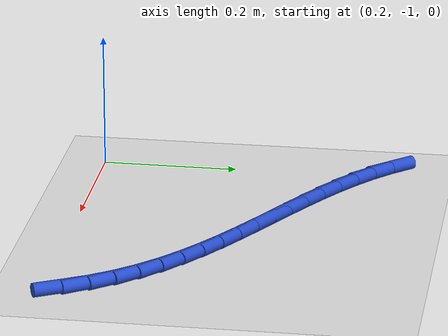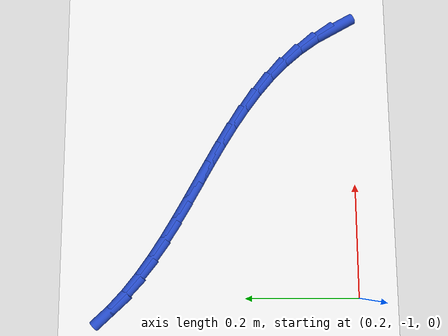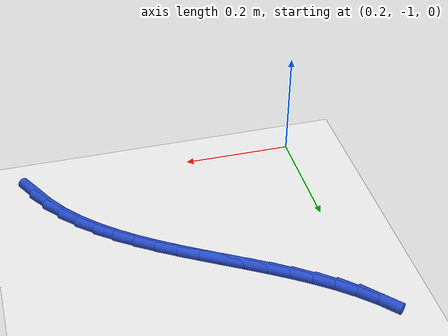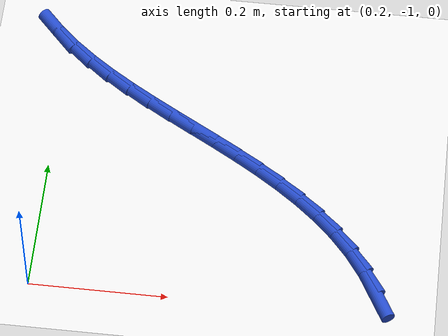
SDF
<sdf version="1.6">
 <world name="default">
  <model name="ground_plane">
   <static>1</static>
   <link name="link">
    <collision name="collision">
     <geometry><plane><normal>0 0 1</normal><size>100 100</size></plane></geometry>
     <surface><friction><ode><mu>100</mu><mu2>50</mu2></ode></friction></surface>
    </collision>
    <visual name="visual">
     <cast_shadows>0</cast_shadows>
     <geometry><plane><normal>0 0 1</normal><size>100 100</size></plane></geometry>
     <material>
      <script><uri>file://media/materials/scripts/gazebo.material</uri><name>Gazebo/WhiteGlow</name></script>
     </material>
    </visual>
   </link>
  </model>
  <model name="line">
   <link name="link_187">
    <pose>0.6930925236907395 -0.9702660807357963 0.01 0 1.57 -1.0674114153881227</pose>
    <collision name="collision">
     <geometry><cylinder><radius>0.01</radius><length>0.08</length></cylinder></geometry>
    </collision>
    <visual name="visual">
     <material>
      <script><name>Gazebo/Blue</name><uri>file://media/materials/scripts/gazebo.material</uri></script>
     </material>
     <geometry><cylinder><radius>0.01</radius><length>0.08</length></cylinder></geometry>
    </visual>
   </link>
   <link name="link_188">
    <pose>0.6742428546986615 -0.9360378778726408 0.01 0 1.57 -0.9606049195033619</pose>
    <collision name="collision">
     <geometry><cylinder><radius>0.01</radius><length>0.08</length></cylinder></geometry>
    </collision>
    <visual name="visual">
     <material>
      <script><name>Gazebo/Blue</name><uri>file://media/materials/scripts/gazebo.material</uri></script>
     </material>
     <geometry><cylinder><radius>0.01</radius><length>0.08</length></cylinder></geometry>
    </visual>
   </link>
   <link name="link_189">
    <pose>0.6522844045194799 -0.9046329428093817 0.01 0 1.57 -0.8628305489370522</pose>
    <collision name="collision">
     <geometry><cylinder><radius>0.01</radius><length>0.08</length></cylinder></geometry>
    </collision>
    <visual name="visual">
     <material>
      <script><name>Gazebo/Blue</name><uri>file://media/materials/scripts/gazebo.material</uri></script>
     </material>
     <geometry><cylinder><radius>0.01</radius><length>0.08</length></cylinder></geometry>
    </visual>
   </link>
   <link name="link_190">
    <pose>0.6275602483954317 -0.8757495069277265 0.01 0 1.57 -0.7764209451681272</pose>
    <collision name="collision">
     <geometry><cylinder><radius>0.01</radius><length>0.08</length></cylinder></geometry>
    </collision>
    <visual name="visual">
     <material>
      <script><name>Gazebo/Blue</name><uri>file://media/materials/scripts/gazebo.material</uri></script>
     </material>
     <geometry><cylinder><radius>0.01</radius><length>0.08</length></cylinder></geometry>
    </visual>
   </link>
   <link name="link_191">
    <pose>0.6004134615687547 -0.8490858016093839 0.01 0 1.57 -0.7025711231255173</pose>
    <collision name="collision">
     <geometry><cylinder><radius>0.01</radius><length>0.08</length></cylinder></geometry>
    </collision>
    <visual name="visual">
     <material>
      <script><name>Gazebo/Blue</name><uri>file://media/materials/scripts/gazebo.material</uri></script>
     </material>
     <geometry><cylinder><radius>0.01</radius><length>0.08</length></cylinder></geometry>
    </visual>
   </link>
   <link name="link_192">
    <pose>0.5711871192816859 -0.824340058236061 0.01 0 1.57 -0.6415850096895259</pose>
    <collision name="collision">
     <geometry><cylinder><radius>0.01</radius><length>0.08</length></cylinder></geometry>
    </collision>
    <visual name="visual">
     <material>
      <script><name>Gazebo/Blue</name><uri>file://media/materials/scripts/gazebo.material</uri></script>
     </material>
     <geometry><cylinder><radius>0.01</radius><length>0.08</length></cylinder></geometry>
    </visual>
   </link>
   <link name="link_193">
    <pose>0.5402242967764617 -0.8012105081894654 0.01 0 1.57 -0.5932117007790663</pose>
    <collision name="collision">
     <geometry><cylinder><radius>0.01</radius><length>0.08</length></cylinder></geometry>
    </collision>
    <visual name="visual">
     <material>
      <script><name>Gazebo/Blue</name><uri>file://media/materials/scripts/gazebo.material</uri></script>
     </material>
     <geometry><cylinder><radius>0.01</radius><length>0.08</length></cylinder></geometry>
    </visual>
   </link>
   <link name="link_194">
    <pose>0.50786806929532 -0.7793953828513053 0.01 0 1.57 -0.5569481177985602</pose>
    <collision name="collision">
     <geometry><cylinder><radius>0.01</radius><length>0.08</length></cylinder></geometry>
    </collision>
    <visual name="visual">
     <material>
      <script><name>Gazebo/Blue</name><uri>file://media/materials/scripts/gazebo.material</uri></script>
     </material>
     <geometry><cylinder><radius>0.01</radius><length>0.08</length></cylinder></geometry>
    </visual>
   </link>
   <link name="link_195">
    <pose>0.4744615120804966 -0.7585929136032877 0.01 0 1.57 -0.5322603709807059</pose>
    <collision name="collision">
     <geometry><cylinder><radius>0.01</radius><length>0.08</length></cylinder></geometry>
    </collision>
    <visual name="visual">
     <material>
      <script><name>Gazebo/Blue</name><uri>file://media/materials/scripts/gazebo.material</uri></script>
     </material>
     <geometry><cylinder><radius>0.01</radius><length>0.08</length></cylinder></geometry>
    </visual>
   </link>
   <link name="link_196">
    <pose>0.4403477003742305 -0.7385013318271212 0.01 0 1.57 -0.5187252034479937</pose>
    <collision name="collision">
     <geometry><cylinder><radius>0.01</radius><length>0.08</length></cylinder></geometry>
    </collision>
    <visual name="visual">
     <material>
      <script><name>Gazebo/Blue</name><uri>file://media/materials/scripts/gazebo.material</uri></script>
     </material>
     <geometry><cylinder><radius>0.01</radius><length>0.08</length></cylinder></geometry>
    </visual>
   </link>
   <link name="link_197">
    <pose>0.4058697094187578 -0.7188188689045129 0.01 0 1.57 -0.5161110738527778</pose>
    <collision name="collision">
     <geometry><cylinder><radius>0.01</radius><length>0.08</length></cylinder></geometry>
    </collision>
    <visual name="visual">
     <material>
      <script><name>Gazebo/Blue</name><uri>file://media/materials/scripts/gazebo.material</uri></script>
     </material>
     <geometry><cylinder><radius>0.01</radius><length>0.08</length></cylinder></geometry>
    </visual>
   </link>
   <link name="link_198">
    <pose>0.371370614456316 -0.6992437562171712 0.01 0 1.57 -0.5244182229108407</pose>
    <collision name="collision">
     <geometry><cylinder><radius>0.01</radius><length>0.08</length></cylinder></geometry>
    </collision>
    <visual name="visual">
     <material>
      <script><name>Gazebo/Blue</name><uri>file://media/materials/scripts/gazebo.material</uri></script>
     </material>
     <geometry><cylinder><radius>0.01</radius><length>0.08</length></cylinder></geometry>
    </visual>
   </link>
   <link name="link_199">
    <pose>0.33719349072914084 -0.6794742251468024 0.01 0 1.57 -0.5438893021783304</pose>
    <collision name="collision">
     <geometry><cylinder><radius>0.01</radius><length>0.08</length></cylinder></geometry>
    </collision>
    <visual name="visual">
     <material>
      <script><name>Gazebo/Blue</name><uri>file://media/materials/scripts/gazebo.material</uri></script>
     </material>
     <geometry><cylinder><radius>0.01</radius><length>0.08</length></cylinder></geometry>
    </visual>
   </link>
   <link name="link_200">
    <pose>0.3036814134794715 -0.6592085070751159 0.01 0 1.57 -0.5749920213840336</pose>
    <collision name="collision">
     <geometry><cylinder><radius>0.01</radius><length>0.08</length></cylinder></geometry>
    </collision>
    <visual name="visual">
     <material>
      <script><name>Gazebo/Blue</name><uri>file://media/materials/scripts/gazebo.material</uri></script>
     </material>
     <geometry><cylinder><radius>0.01</radius><length>0.08</length></cylinder></geometry>
    </visual>
   </link>
   <link name="link_201">
    <pose>0.2711774579495441 -0.6381448333838189 0.01 0 1.57 -0.6183643159359723</pose>
    <collision name="collision">
     <geometry><cylinder><radius>0.01</radius><length>0.08</length></cylinder></geometry>
    </collision>
    <visual name="visual">
     <material>
      <script><name>Gazebo/Blue</name><uri>file://media/materials/scripts/gazebo.material</uri></script>
     </material>
     <geometry><cylinder><radius>0.01</radius><length>0.08</length></cylinder></geometry>
    </visual>
   </link>
   <link name="link_202">
    <pose>0.2400246993815958 -0.6159814354546187 0.01 0 1.57 -0.674701648290384</pose>
    <collision name="collision">
     <geometry><cylinder><radius>0.01</radius><length>0.08</length></cylinder></geometry>
    </collision>
    <visual name="visual">
     <material>
      <script><name>Gazebo/Blue</name><uri>file://media/materials/scripts/gazebo.material</uri></script>
     </material>
     <geometry><cylinder><radius>0.01</radius><length>0.08</length></cylinder></geometry>
    </visual>
   </link>
   <link name="link_203">
    <pose>0.210566213017863 -0.5924165446692228 0.01 0 1.57 -0.7445589429586337</pose>
    <collision name="collision">
     <geometry><cylinder><radius>0.01</radius><length>0.08</length></cylinder></geometry>
    </collision>
    <visual name="visual">
     <material>
      <script><name>Gazebo/Blue</name><uri>file://media/materials/scripts/gazebo.material</uri></script>
     </material>
     <geometry><cylinder><radius>0.01</radius><length>0.08</length></cylinder></geometry>
    </visual>
   </link>
   <link name="link_204">
    <pose>0.18314507410058425 -0.5671483924093399 0.01 0 1.57 -0.828046651742021</pose>
    <collision name="collision">
     <geometry><cylinder><radius>0.01</radius><length>0.08</length></cylinder></geometry>
    </collision>
    <visual name="visual">
     <material>
      <script><name>Gazebo/Blue</name><uri>file://media/materials/scripts/gazebo.material</uri></script>
     </material>
     <geometry><cylinder><radius>0.01</radius><length>0.08</length></cylinder></geometry>
    </visual>
   </link>
  </model>
 </world>
</sdf>
